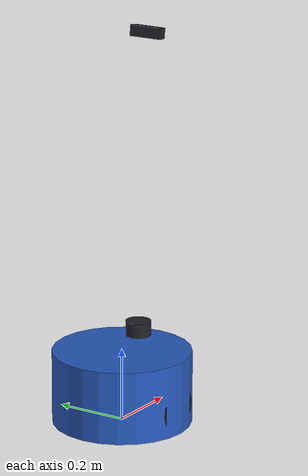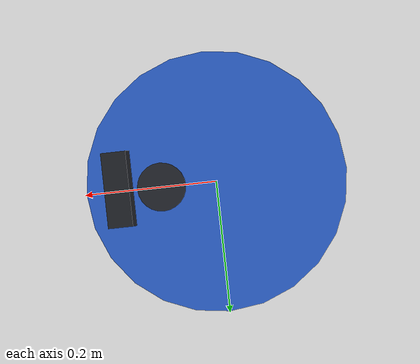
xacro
<?xml version="1.0"?>
<robot name="follow_robot" xmlns:xacro="http://www.ros.org/wiki/xacro">
  <xacro:arg name="use_sim" default="true"/>
  <xacro:property name="use_sim" value="$(arg use_sim)"/>

  <xacro:property name="base_radius" value="0.18"/>
  <xacro:property name="wheel_separation" value="0.32"/>
  <xacro:property name="wheel_radius" value="0.065"/>
  <xacro:property name="camera_x" value="0.12"/>
  <xacro:property name="camera_y" value="0.0"/>
  <xacro:property name="camera_z" value="1.05"/>
  <xacro:property name="camera_pitch" value="0.14"/>

  <material name="grey"><color rgba="0.55 0.57 0.60 1.0"/></material>
  <material name="dark"><color rgba="0.12 0.13 0.15 1.0"/></material>
  <material name="blue"><color rgba="0.15 0.35 0.75 1.0"/></material>

  <!-- ======================= base ======================= -->
  <link name="base_link">
    <visual>
      <origin xyz="0 0 0.10" rpy="0 0 0"/>
      <geometry><cylinder radius="0.19" length="0.20"/></geometry>
      <material name="blue"/>
    </visual>
    <collision>
      <origin xyz="0 0 0.10" rpy="0 0 0"/>
      <geometry><cylinder radius="0.19" length="0.20"/></geometry>
    </collision>
    <inertial>
      <origin xyz="0 0 0.10"/>
      <mass value="2.2"/>
      <inertia ixx="0.02" ixy="0" ixz="0" iyy="0.02" iyz="0" izz="0.035"/>
    </inertial>
  </link>

  <link name="base_footprint"/>
  <joint name="base_footprint_joint" type="fixed">
    <parent link="base_footprint"/>
    <child link="base_link"/>
    <origin xyz="0 0 0" rpy="0 0 0"/>
  </joint>

  <!-- ======================= wheels ======================= -->
  <xacro:macro name="wheel" params="side reflect">
    <link name="${side}_wheel_link">
      <visual>
        <origin rpy="1.5707963 0 0" xyz="0 0 0"/>
        <geometry><cylinder radius="${wheel_radius}" length="0.04"/></geometry>
        <material name="dark"/>
      </visual>
      <collision>
        <origin rpy="1.5707963 0 0" xyz="0 0 0"/>
        <geometry><cylinder radius="${wheel_radius}" length="0.04"/></geometry>
      </collision>
      <inertial>
        <mass value="0.15"/>
        <inertia ixx="0.0001" ixy="0" ixz="0" iyy="0.0001" iyz="0" izz="0.0001"/>
      </inertial>
    </link>
    <joint name="${side}_wheel_joint" type="continuous">
      <parent link="base_link"/>
      <child link="${side}_wheel_link"/>
      <origin xyz="0 ${reflect * wheel_separation / 2} 0.065" rpy="0 0 0"/>
      <axis xyz="0 1 0"/>
      <dynamics damping="0.05" friction="0.02"/>
    </joint>
  </xacro:macro>
  <xacro:wheel side="left" reflect="1"/>
  <xacro:wheel side="right" reflect="-1"/>

  <link name="caster_link">
    <visual><geometry><sphere radius="0.03"/></geometry><material name="grey"/></visual>
    <collision><geometry><sphere radius="0.03"/></geometry></collision>
    <inertial><mass value="0.05"/><inertia ixx="1e-5" ixy="0" ixz="0" iyy="1e-5" iyz="0" izz="1e-5"/></inertial>
  </link>
  <joint name="caster_joint" type="fixed">
    <parent link="base_link"/>
    <child link="caster_link"/>
    <origin xyz="-0.14 0 0.03" rpy="0 0 0"/>
  </joint>

  <!-- ======================= lidar (RPLIDAR A1) ======================= -->
  <link name="laser">
    <visual>
      <origin xyz="0 0 0.02"/>
      <geometry><cylinder radius="0.035" length="0.04"/></geometry>
      <material name="dark"/>
    </visual>
    <inertial><mass value="0.17"/><inertia ixx="1e-4" ixy="0" ixz="0" iyy="1e-4" iyz="0" izz="1e-4"/></inertial>
  </link>
  <joint name="laser_joint" type="fixed">
    <parent link="base_link"/>
    <child link="laser"/>
    <origin xyz="0.08 0 0.22" rpy="0 0 0"/>
  </joint>

  <!-- ======================= camera (extrinsics = calibration) ======= -->
  <link name="camera_link">
    <visual>
      <geometry><box size="0.03 0.09 0.03"/></geometry>
      <material name="dark"/>
    </visual>
    <inertial><mass value="0.08"/><inertia ixx="1e-5" ixy="0" ixz="0" iyy="1e-5" iyz="0" izz="1e-5"/></inertial>
  </link>
  <!-- pitch=+0.14 rad tilts the camera 8 deg downwards; update this joint after
       the physical camera-base calibration (docs/calibration.md) -->
  <joint name="camera_joint" type="fixed">
    <parent link="base_link"/>
    <child link="camera_link"/>
    <origin xyz="${camera_x} ${camera_y} ${camera_z}" rpy="0 ${camera_pitch} 0"/>
  </joint>
  <link name="camera_optical"/>
  <!-- REP-103 optical frame: x right, y down, z forward -->
  <joint name="camera_optical_joint" type="fixed">
    <parent link="camera_link"/>
    <child link="camera_optical"/>
    <origin xyz="0 0 0" rpy="-1.5707963 0 -1.5707963"/>
  </joint>

  <!-- ======================= Gazebo Harmonic ======================= -->
  <xacro:if value="${use_sim}">
    <gazebo reference="base_link">
      <self_collide>false</self_collide>
    </gazebo>
    <gazebo reference="laser">
      <sensor name="lidar" type="gpu_lidar">
        <topic>scan</topic>
        <update_rate>10.0</update_rate>
        <lidar>
          <scan>
            <horizontal>
              <samples>720</samples>
              <resolution>1</resolution>
              <min_angle>-3.14159</min_angle>
              <max_angle>3.14159</max_angle>
            </horizontal>
          </scan>
          <range>
            <min>0.15</min>
            <max>12.0</max>
            <resolution>0.01</resolution>
          </range>
        </lidar>
        <always_on>true</always_on>
        <visualize>true</visualize>
      </sensor>
    </gazebo>
    <gazebo reference="camera_link">
      <sensor name="depth_camera" type="rgbd_camera">
        <topic>camera</topic>
        <update_rate>10.0</update_rate>
        <camera>
          <horizontal_fov>1.047</horizontal_fov>
          <image>
            <width>640</width>
            <height>480</height>
            <format>R8G8B8</format>
          </image>
          <clip><near>0.15</near><far>12.0</far></clip>
        </camera>
        <always_on>true</always_on>
        <visualize>true</visualize>
      </sensor>
    </gazebo>

    <gazebo>
      <plugin filename="gz-sim-diff-drive-system" name="gz::sim::systems::DiffDrive">
        <left_joint>left_wheel_joint</left_joint>
        <right_joint>right_wheel_joint</right_joint>
        <wheel_separation>${wheel_separation}</wheel_separation>
        <wheel_radius>${wheel_radius}</wheel_radius>
        <max_linear_acceleration>1.0</max_linear_acceleration>
        <max_angular_acceleration>4.0</max_angular_acceleration>
        <topic>cmd_vel</topic>
        <odom_topic>odom</odom_topic>
        <frame_id>odom</frame_id>
        <child_frame_id>base_link</child_frame_id>
      </plugin>
      <plugin filename="gz-sim-joint-state-publisher-system" name="gz::sim::systems::JointStatePublisher">
        <topic>joint_states</topic>
      </plugin>
    </gazebo>
  </xacro:if>
</robot>
